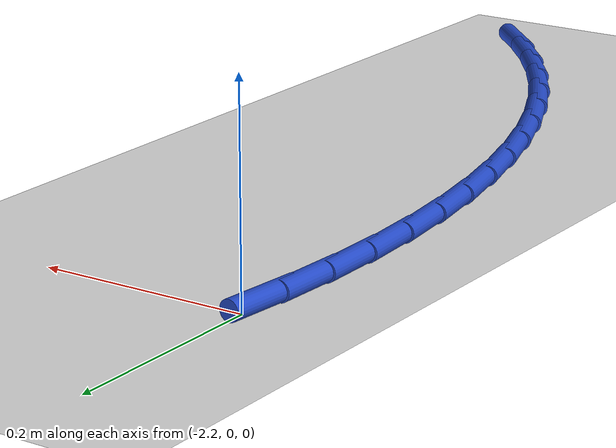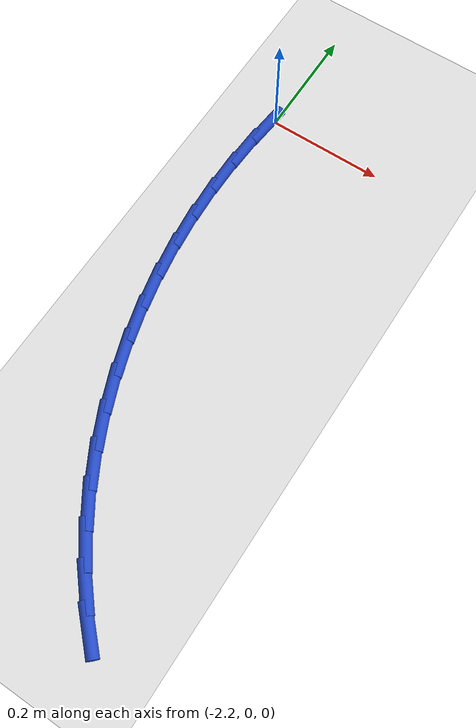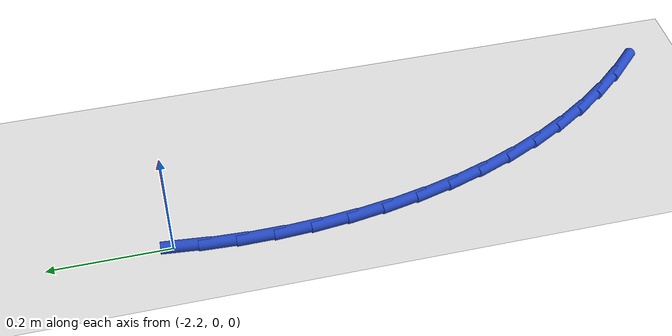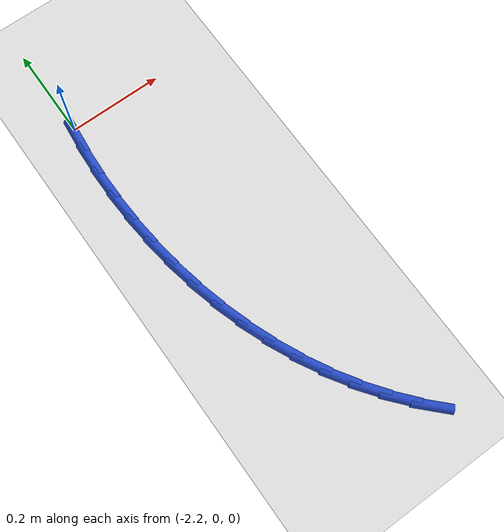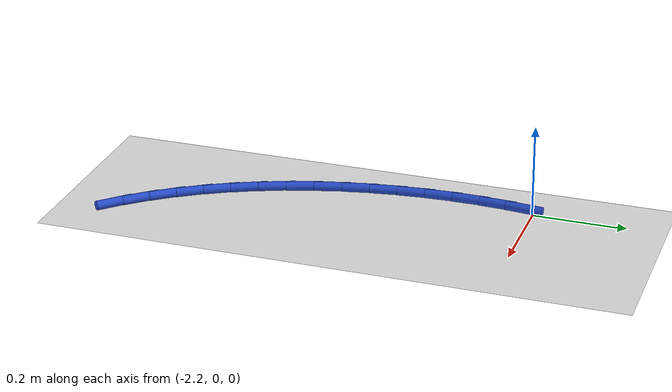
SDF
<sdf version="1.6">
 <world name="default">
  <model name="ground_plane">
   <static>1</static>
   <link name="link">
    <collision name="collision">
     <geometry><plane><normal>0 0 1</normal><size>100 100</size></plane></geometry>
     <surface><friction><ode><mu>100</mu><mu2>50</mu2></ode></friction></surface>
    </collision>
    <visual name="visual">
     <cast_shadows>0</cast_shadows>
     <geometry><plane><normal>0 0 1</normal><size>100 100</size></plane></geometry>
     <material>
      <script><uri>file://media/materials/scripts/gazebo.material</uri><name>Gazebo/WhiteGlow</name></script>
     </material>
    </visual>
   </link>
  </model>
  <model name="line">
   <link name="link_59">
    <pose>-2.2059145800458415 -0.01952590051684849 0.01 0 1.57 1.4764636648461447</pose>
    <collision name="collision">
     <geometry><cylinder><radius>0.01</radius><length>0.08</length></cylinder></geometry>
    </collision>
    <visual name="visual">
     <material>
      <script><name>Gazebo/Blue</name><uri>file://media/materials/scripts/gazebo.material</uri></script>
     </material>
     <geometry><cylinder><radius>0.01</radius><length>0.08</length></cylinder></geometry>
    </visual>
   </link>
   <link name="link_60">
    <pose>-2.211473724467433 -0.07828227278001935 0.01 0 1.57 1.5275775773909348</pose>
    <collision name="collision">
     <geometry><cylinder><radius>0.01</radius><length>0.08</length></cylinder></geometry>
    </collision>
    <visual name="visual">
     <material>
      <script><name>Gazebo/Blue</name><uri>file://media/materials/scripts/gazebo.material</uri></script>
     </material>
     <geometry><cylinder><radius>0.01</radius><length>0.08</length></cylinder></geometry>
    </visual>
   </link>
   <link name="link_61">
    <pose>-2.2140451118139364 -0.13774225681701416 0.01 0 1.57 -1.563456965126284</pose>
    <collision name="collision">
     <geometry><cylinder><radius>0.01</radius><length>0.08</length></cylinder></geometry>
    </collision>
    <visual name="visual">
     <material>
      <script><name>Gazebo/Blue</name><uri>file://media/materials/scripts/gazebo.material</uri></script>
     </material>
     <geometry><cylinder><radius>0.01</radius><length>0.08</length></cylinder></geometry>
    </visual>
   </link>
   <link name="link_62">
    <pose>-2.213605596805042 -0.19762581849968552 0.01 0 1.57 -1.5129942175128437</pose>
    <collision name="collision">
     <geometry><cylinder><radius>0.01</radius><length>0.08</length></cylinder></geometry>
    </collision>
    <visual name="visual">
     <material>
      <script><name>Gazebo/Blue</name><uri>file://media/materials/scripts/gazebo.material</uri></script>
     </material>
     <geometry><cylinder><radius>0.01</radius><length>0.08</length></cylinder></geometry>
    </visual>
   </link>
   <link name="link_63">
    <pose>-2.2101320341604342 -0.25765292369988646 0.01 0 1.57 -1.4621807527243291</pose>
    <collision name="collision">
     <geometry><cylinder><radius>0.01</radius><length>0.08</length></cylinder></geometry>
    </collision>
    <visual name="visual">
     <material>
      <script><name>Gazebo/Blue</name><uri>file://media/materials/scripts/gazebo.material</uri></script>
     </material>
     <geometry><cylinder><radius>0.01</radius><length>0.08</length></cylinder></geometry>
    </visual>
   </link>
   <link name="link_64">
    <pose>-2.2036012785998023 -0.3175435382894675 0.01 0 1.57 -1.4105800681741798</pose>
    <collision name="collision">
     <geometry><cylinder><radius>0.01</radius><length>0.08</length></cylinder></geometry>
    </collision>
    <visual name="visual">
     <material>
      <script><name>Gazebo/Blue</name><uri>file://media/materials/scripts/gazebo.material</uri></script>
     </material>
     <geometry><cylinder><radius>0.01</radius><length>0.08</length></cylinder></geometry>
    </visual>
   </link>
   <link name="link_65">
    <pose>-2.1939901848428303 -0.3770176281402817 0.01 0 1.57 -1.3577617280652652</pose>
    <collision name="collision">
     <geometry><cylinder><radius>0.01</radius><length>0.08</length></cylinder></geometry>
    </collision>
    <visual name="visual">
     <material>
      <script><name>Gazebo/Blue</name><uri>file://media/materials/scripts/gazebo.material</uri></script>
     </material>
     <geometry><cylinder><radius>0.01</radius><length>0.08</length></cylinder></geometry>
    </visual>
   </link>
   <link name="link_66">
    <pose>-2.1812756076092064 -0.4357951591241818 0.01 0 1.57 -1.3032997155839678</pose>
    <collision name="collision">
     <geometry><cylinder><radius>0.01</radius><length>0.08</length></cylinder></geometry>
    </collision>
    <visual name="visual">
     <material>
      <script><name>Gazebo/Blue</name><uri>file://media/materials/scripts/gazebo.material</uri></script>
     </material>
     <geometry><cylinder><radius>0.01</radius><length>0.08</length></cylinder></geometry>
    </visual>
   </link>
   <link name="link_67">
    <pose>-2.1654344016186173 -0.49359609711301866 0.01 0 1.57 -1.2467733750429855</pose>
    <collision name="collision">
     <geometry><cylinder><radius>0.01</radius><length>0.08</length></cylinder></geometry>
    </collision>
    <visual name="visual">
     <material>
      <script><name>Gazebo/Blue</name><uri>file://media/materials/scripts/gazebo.material</uri></script>
     </material>
     <geometry><cylinder><radius>0.01</radius><length>0.08</length></cylinder></geometry>
    </visual>
   </link>
   <link name="link_68">
    <pose>-2.146443421590751 -0.5501404079786452 0.01 0 1.57 -1.1877718491920355</pose>
    <collision name="collision">
     <geometry><cylinder><radius>0.01</radius><length>0.08</length></cylinder></geometry>
    </collision>
    <visual name="visual">
     <material>
      <script><name>Gazebo/Blue</name><uri>file://media/materials/scripts/gazebo.material</uri></script>
     </material>
     <geometry><cylinder><radius>0.01</radius><length>0.08</length></cylinder></geometry>
    </visual>
   </link>
   <link name="link_69">
    <pose>-2.1242795222452915 -0.6051480575929133 0.01 0 1.57 -1.125903093964737</pose>
    <collision name="collision">
     <geometry><cylinder><radius>0.01</radius><length>0.08</length></cylinder></geometry>
    </collision>
    <visual name="visual">
     <material>
      <script><name>Gazebo/Blue</name><uri>file://media/materials/scripts/gazebo.material</uri></script>
     </material>
     <geometry><cylinder><radius>0.01</radius><length>0.08</length></cylinder></geometry>
    </visual>
   </link>
   <link name="link_70">
    <pose>-2.0989195583019282 -0.6583390118276763 0.01 0 1.57 -1.0608086418777527</pose>
    <collision name="collision">
     <geometry><cylinder><radius>0.01</radius><length>0.08</length></cylinder></geometry>
    </collision>
    <visual name="visual">
     <material>
      <script><name>Gazebo/Blue</name><uri>file://media/materials/scripts/gazebo.material</uri></script>
     </material>
     <geometry><cylinder><radius>0.01</radius><length>0.08</length></cylinder></geometry>
    </visual>
   </link>
   <link name="link_71">
    <pose>-2.070340384480347 -0.7094332365547846 0.01 0 1.57 -0.9922018271106952</pose>
    <collision name="collision">
     <geometry><cylinder><radius>0.01</radius><length>0.08</length></cylinder></geometry>
    </collision>
    <visual name="visual">
     <material>
      <script><name>Gazebo/Blue</name><uri>file://media/materials/scripts/gazebo.material</uri></script>
     </material>
     <geometry><cylinder><radius>0.01</radius><length>0.08</length></cylinder></geometry>
    </visual>
   </link>
   <link name="link_72">
    <pose>-2.0385194563934577 -0.7581515528700224 0.01 0 1.57 -0.9218566537355725</pose>
    <collision name="collision">
     <geometry><cylinder><radius>0.01</radius><length>0.08</length></cylinder></geometry>
    </collision>
    <visual name="visual">
     <material>
      <script><name>Gazebo/Blue</name><uri>file://media/materials/scripts/gazebo.material</uri></script>
     </material>
     <geometry><cylinder><radius>0.01</radius><length>0.08</length></cylinder></geometry>
    </visual>
   </link>
   <link name="link_73">
    <pose>-2.003503841535089 -0.8043138572858612 0.01 0 1.57 -0.8537165091299639</pose>
    <collision name="collision">
     <geometry><cylinder><radius>0.01</radius><length>0.08</length></cylinder></geometry>
    </collision>
    <visual name="visual">
     <material>
      <script><name>Gazebo/Blue</name><uri>file://media/materials/scripts/gazebo.material</uri></script>
     </material>
     <geometry><cylinder><radius>0.01</radius><length>0.08</length></cylinder></geometry>
    </visual>
   </link>
   <link name="link_74">
    <pose>-1.9654741699226232 -0.8479301397657796 0.01 0 1.57 -0.7884950685976663</pose>
    <collision name="collision">
     <geometry><cylinder><radius>0.01</radius><length>0.08</length></cylinder></geometry>
    </collision>
    <visual name="visual">
     <material>
      <script><name>Gazebo/Blue</name><uri>file://media/materials/scripts/gazebo.material</uri></script>
     </material>
     <geometry><cylinder><radius>0.01</radius><length>0.08</length></cylinder></geometry>
    </visual>
   </link>
  </model>
 </world>
</sdf>
